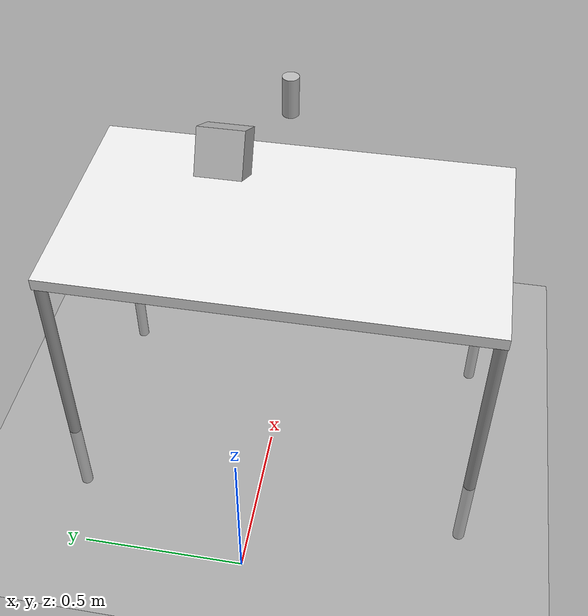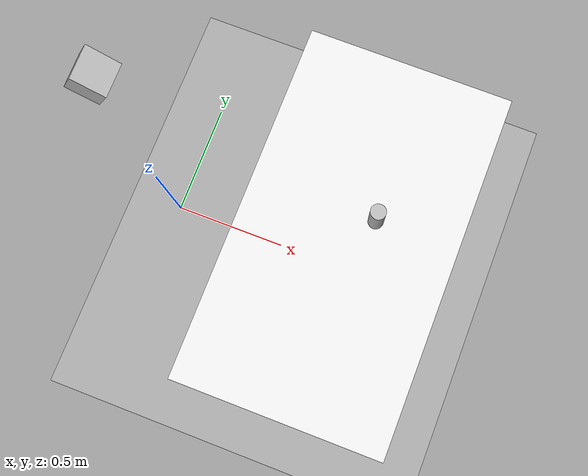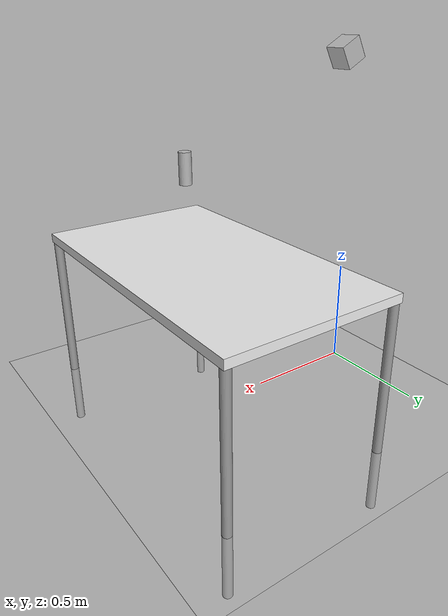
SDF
<sdf version="1.6">
 <world name="default">
  <light name="sun" type="directional">
   <pose>0 0 10 0 -0 0</pose>
   <diffuse>0.8 0.8 0.8 1</diffuse>
   <specular>0.1 0.1 0.1 1</specular>
   <attenuation>
    <range>1000</range>
    <constant>0.9</constant>
    <linear>0.01</linear>
    <quadratic>0.001</quadratic>
   </attenuation>
   <direction>-0.5 0.5 -1</direction>
  </light>
  <model name="ground_plane">
   <static>1</static>
   <link name="link">
    <collision name="collision">
     <geometry><plane><normal>0 0 1</normal><size>100 100</size></plane></geometry>
     <surface><friction><ode><mu>100</mu><mu2>50</mu2></ode></friction></surface>
    </collision>
    <visual name="visual">
     <cast_shadows>0</cast_shadows>
     <geometry><plane><normal>0 0 1</normal><size>100 100</size></plane></geometry>
     <material>
      <script><uri>file://media/materials/scripts/gazebo.material</uri><name>Gazebo/Grey</name></script>
     </material>
    </visual>
   </link>
  </model>
  <gravity>0 0 -9.8</gravity>
  <magnetic_field>6e-06 2.3e-05 -4.2e-05</magnetic_field>
  <atmosphere type="adiabatic"/>
  <physics name="default_physics" default="1" type="ode">
   <max_step_size>0.0005</max_step_size>
   <real_time_factor>0.5</real_time_factor>
   <real_time_update_rate>1000</real_time_update_rate>
   <ode>
    <solver><type>world</type><iters>200</iters></solver>
    <constraint><cfm>0.5</cfm><erp>0.8</erp></constraint>
   </ode>
  </physics>
  <scene><ambient>0.4 0.4 0.4 1</ambient><background>0.7 0.7 0.7 1</background><shadows>1</shadows></scene>
  <spherical_coordinates>
   <surface_model>EARTH_WGS84</surface_model>
   <latitude_deg>0</latitude_deg>
   <longitude_deg>0</longitude_deg>
   <elevation>0</elevation>
   <heading_deg>0</heading_deg>
  </spherical_coordinates>
  <model name="kinect2_victor_head">
   <pose>0.07 0 1.5 0 0.5 0</pose>
   <static>1</static>
   <link name="kinect2_victor_head">
    <inertial>
     <mass>1</mass>
     <inertia><ixx>1</ixx><ixy>0</ixy><ixz>0</ixz><iyy>1</iyy><iyz>0</iyz><izz>1</izz></inertia>
    </inertial>
    <collision name="collision"><geometry><box><size>0.1 0.1 0.1</size></box></geometry></collision>
    <visual name="visual"><geometry><box><size>0.1 0.1 0.1</size></box></geometry></visual>
    <sensor name="camera" type="depth">
     <camera name="__default__">
      <horizontal_fov>1.578</horizontal_fov>
      <image><width>1920</width><height>1080</height><format>B8G8R8</format></image>
      <clip><near>0.05</near><far>2.5</far></clip>
      <depth_camera><output>depths</output></depth_camera>
     </camera>
     <plugin name="kinect2_victor_head_plugin" filename="libgazebo_ros_openni_kinect.so">
      <cameraName>kinect2_victor_head</cameraName>
      <alwaysOn>true</alwaysOn>
      <updateRate>3</updateRate>
      <imageTopicName>hd/image_color_rect</imageTopicName>
      <depthImageTopicName>hd/image_depth_rect</depthImageTopicName>
      <pointCloudTopicName>hd/points</pointCloudTopicName>
      <cameraInfoTopicName>hd/camera_info</cameraInfoTopicName>
      <depthImageCameraInfoTopicName>hd/camera_info</depthImageCameraInfoTopicName>
      <frameName>kinect2_victor_head_optical_frame</frameName>
      <baseline>0.07</baseline>
      <distortion_k1>0.0</distortion_k1>
      <distortion_k2>0.0</distortion_k2>
      <distortion_k3>0.0</distortion_k3>
      <distortion_t1>0.0</distortion_t1>
      <distortion_t2>0.0</distortion_t2>
      <pointCloudCutoff>0.05</pointCloudCutoff>
      <robotNamespace>/</robotNamespace>
     </plugin>
     <always_on>1</always_on>
     <update_rate>3</update_rate>
    </sensor>
    <gravity>0</gravity>
   </link>
  </model>
  <model name="table">
   <static>1</static>
   <link name="link">
    <collision name="surface">
     <pose>0 0 1 0 -0 0</pose>
     <geometry><box><size>1.5 0.8 0.03</size></box></geometry>
     <surface><friction><ode><mu>0.6</mu><mu2>0.6</mu2></ode></friction></surface>
    </collision>
    <visual name="visual1">
     <pose>0 0 1 0 -0 0</pose>
     <geometry><box><size>1.4 0.8 0.04</size></box></geometry>
     <material>
      <script><uri>file://media/materials/scripts/gazebo.material</uri><name>Gazebo/White</name></script>
     </material>
    </visual>
    <collision name="front_left_leg">
     <pose>0.68 0.38 0.5 0 -0 0</pose>
     <geometry><cylinder><radius>0.02</radius><length>1</length></cylinder></geometry>
    </collision>
    <visual name="front_left_leg">
     <pose>0.68 0.38 0.5 0 -0 0</pose>
     <geometry><cylinder><radius>0.02</radius><length>1</length></cylinder></geometry>
     <material>
      <script><uri>file://media/materials/scripts/gazebo.material</uri><name>Gazebo/Grey</name></script>
     </material>
    </visual>
    <collision name="front_right_leg">
     <pose>0.68 -0.38 0.5 0 -0 0</pose>
     <geometry><cylinder><radius>0.02</radius><length>1</length></cylinder></geometry>
    </collision>
    <visual name="front_right_leg">
     <pose>0.68 -0.38 0.5 0 -0 0</pose>
     <geometry><cylinder><radius>0.02</radius><length>1</length></cylinder></geometry>
     <material>
      <script><uri>file://media/materials/scripts/gazebo.material</uri><name>Gazebo/Grey</name></script>
     </material>
    </visual>
    <collision name="back_right_leg">
     <pose>-0.68 -0.38 0.5 0 -0 0</pose>
     <geometry><cylinder><radius>0.02</radius><length>1</length></cylinder></geometry>
    </collision>
    <visual name="back_right_leg">
     <pose>-0.68 -0.38 0.5 0 -0 0</pose>
     <geometry><cylinder><radius>0.02</radius><length>1</length></cylinder></geometry>
     <material>
      <script><uri>file://media/materials/scripts/gazebo.material</uri><name>Gazebo/Grey</name></script>
     </material>
    </visual>
    <collision name="back_left_leg">
     <pose>-0.68 0.38 0.5 0 -0 0</pose>
     <geometry><cylinder><radius>0.02</radius><length>1</length></cylinder></geometry>
    </collision>
    <visual name="back_left_leg">
     <pose>-0.68 0.38 0.5 0 -0 0</pose>
     <geometry><cylinder><radius>0.02</radius><length>1</length></cylinder></geometry>
     <material>
      <script><uri>file://media/materials/scripts/gazebo.material</uri><name>Gazebo/Grey</name></script>
     </material>
    </visual>
    <inertial>
     <inertia><ixx>1</ixx><ixy>0</ixy><ixz>0</ixz><iyy>1</iyy><iyz>0</iyz><izz>1</izz></inertia>
     <mass>1</mass>
    </inertial>
   </link>
   <pose>0.8 0 -0.3 0 0 -1.5708</pose>
  </model>
  <model name="beer">
   <link name="link">
    <pose>0 0 0.115 0 -0 0</pose>
    <inertial>
     <mass>0.39</mass>
     <inertia><ixx>0.00058</ixx><ixy>0</ixy><ixz>0</ixz><iyy>0.00058</iyy><iyz>0</iyz><izz>0.00019</izz></inertia>
    </inertial>
    <collision name="collision">
     <geometry><cylinder><radius>0.025</radius><length>0.125</length></cylinder></geometry>
     <surface>
      <contact>
       <ode><soft_cfm>0.5</soft_cfm><soft_erp>0.8</soft_erp><kp>100000</kp><min_depth>0.0001</min_depth></ode>
      </contact>
      <bounce><restitution_coefficient>0.5</restitution_coefficient></bounce>
     </surface>
    </collision>
    <visual name="visual">
     <geometry><cylinder><radius>0.025</radius><length>0.125</length></cylinder></geometry>
     <material>
      <script>
       <uri>model://beer/materials/scripts</uri>
       <uri>model://beer/materials/textures</uri>
       <name>Beer/Diffuse</name>
      </script>
     </material>
    </visual>
   </link>
   <pose>0.889416 0.004944 1.0 0 -0 0</pose>
  </model>
 </world>
</sdf>
